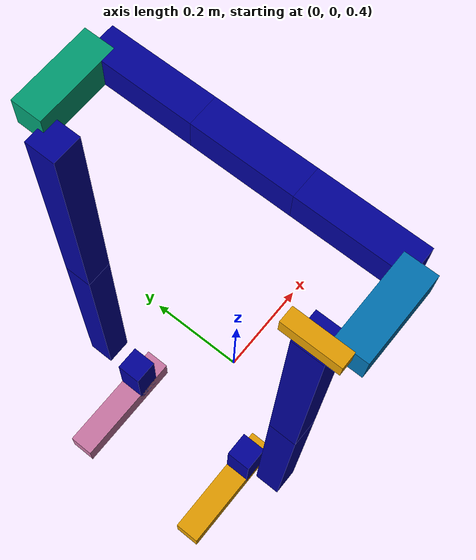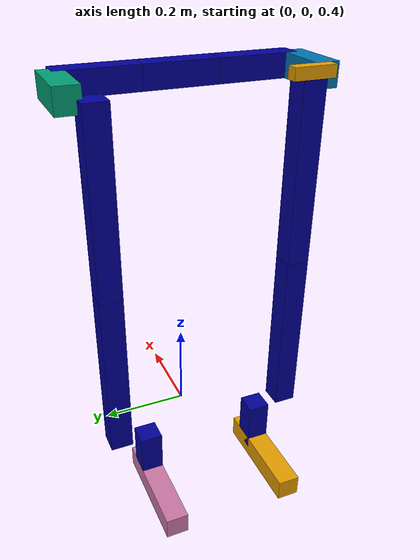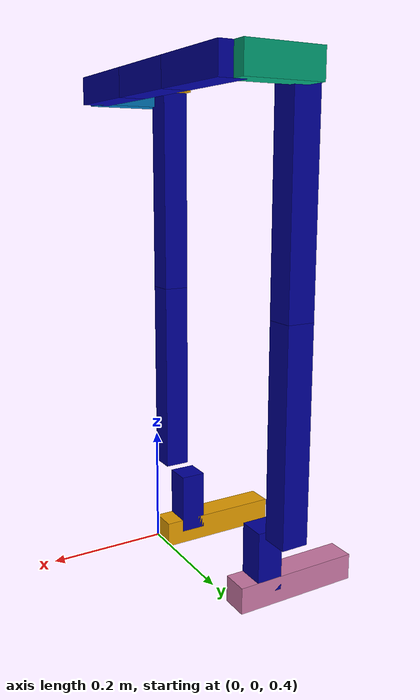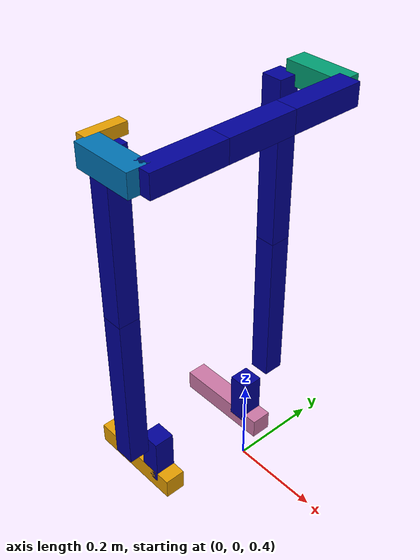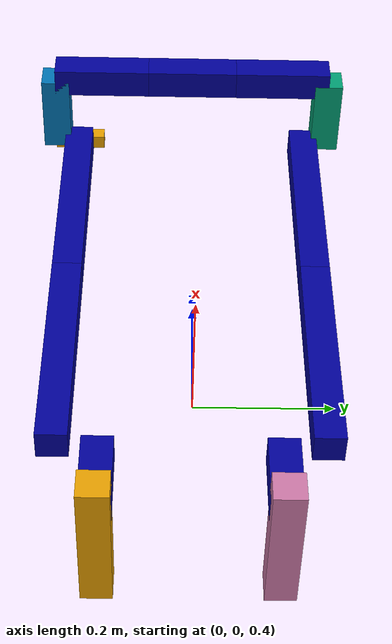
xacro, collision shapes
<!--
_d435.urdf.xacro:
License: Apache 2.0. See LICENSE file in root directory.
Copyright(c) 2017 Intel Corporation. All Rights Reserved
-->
<?xml version="1.0"?>
<!-- Revolute-Revolute Manipulator -->
<robot name="march" xmlns:xacro="http://www.ros.org/wiki/xacro">
    <!-- Switch between airgaiting or standing on the ground-->
    <!-- Value set to: 'world' fixes the robot to the world-->
    <!-- Value set to: 'base_link' makes the robot stand on the ground also set launch parameter fixed to false and set
    the hover_height to 0.0. Set ground_gait to true to ground gait in simulation.-->
    <xacro:arg name="ground_gait" default="false"/>

    <xacro:unless value="$(arg ground_gait)">
        <xacro:property name="parent_name" value="world"/>
        <xacro:property name="hover_height" value="0.3"/>
    </xacro:unless>
    <xacro:if value="$(arg ground_gait)">
        <xacro:property name="parent_name" value="base_link"/>
        <xacro:property name="hover_height" value="0.0"/>
        <gazebo>
            <plugin name="com_controller_plugin" filename="libmarch_gazebo_plugins.so"/>
        </gazebo>
    </xacro:if>

    <!-- The max effort of the rotary joints is lower then the value corresponding to 25A, because short-circuit errors
    have occured while applying the theoretical max effort for a long time. -->
    <xacro:arg name="max_effort_rotary" default="18000.0" />
    <xacro:arg name="max_effort_linear" default="22932.0" />
    <xacro:property name="max_effort_rotary" value="$(arg max_effort_rotary)" />
    <xacro:property name="max_effort_linear" value="$(arg max_effort_linear)" />

    <!-- Values for the safety limits, see https://wiki.ros.org/pr2_controller_manager/safety_limits -->
    <xacro:arg name="k_velocity_value_hfe" default="20000.0" />
    <xacro:arg name="k_velocity_value_kfe" default="20000.0" />
    <xacro:arg name="k_velocity_value_haa" default="20000.0" />
    <xacro:arg name="k_velocity_value_adpf" default="20000.0" />
    <xacro:property name="k_velocity_value_hfe" value="$(arg k_velocity_value_hfe)" />
    <xacro:property name="k_velocity_value_kfe" value="$(arg k_velocity_value_kfe)" />
    <xacro:property name="k_velocity_value_haa" value="$(arg k_velocity_value_haa)" />
    <xacro:property name="k_velocity_value_adpf" value="$(arg k_velocity_value_adpf)" />

    <xacro:arg name="k_position_value_hfe" default="14.88" />
    <xacro:arg name="k_position_value_kfe" default="14.88" />
    <xacro:arg name="k_position_value_haa" default="4.0" />
    <xacro:arg name="k_position_value_adpf" default="5.0" />
    <xacro:property name="k_position_value_hfe" value="$(arg k_position_value_hfe)" />
    <xacro:property name="k_position_value_kfe" value="$(arg k_position_value_kfe)" />
    <xacro:property name="k_position_value_haa" value="$(arg k_position_value_haa)" />
    <xacro:property name="k_position_value_adpf" value="$(arg k_position_value_adpf)" />

    <!-- Constants for robot dimensions -->
    <!-- Masses determined in Catia, see https://confluence.projectmarch.nl:8443/display/51/URDF+description -->
    <xacro:property name="width" value="0.05"/> <!-- Square dimensions (widthxwidth) of beams -->

    <xacro:property name="hip_base_height" value="0.160"/>
    <xacro:property name="hip_base_mass" value="8.686"/>
    <!-- mass = Hip base + HAA actuators -->

    <xacro:property name="hip_aa_frame_height" value="0.170"/>
    <xacro:property name="hip_aa_frame_width" value="0.1395"/>
    <xacro:property name="hip_aa_mass" value="2.982"/>
    <!-- mass = Moving hip -->

    <xacro:property name="upper_leg_height" value="0.385"/>
    <xacro:property name="upper_leg_offset" value="0.04"/>
    <xacro:property name="upper_leg_mass" value="4.995"/>
    <!-- mass = KFE joint + HFE joint + Upper leg -->

    <xacro:property name="lower_leg_height" value="0.385"/>
    <xacro:property name="lower_leg_mass" value="4.458"/>
    <!-- mass = Ankle actuator + Lower leg -->

    <xacro:property name="ankle_plate_height" value="0.12"/>
    <xacro:property name="ankle_plate_offset" value="0.07"/>

    <xacro:property name="foot_height_forward" value="${0.184}"/>
    <xacro:property name="foot_height_backward" value="${0.059}"/>
    <xacro:property name="foot_mass" value="1.821"/>
    <xacro:property name="foot_mu1" value="1"/>
    <xacro:property name="foot_mu2" value="1"/>
    <!-- Minimum allowable depth before contact correction impulse is applied. -->
    <xacro:property name="foot_min_depth" value="0.0005"/>
    <!-- mass = Passive ankle + foot -->

    <!-- Center of Mass (CoM) of the parts -->
    <!-- CoM has been determined in Catia, see https://confluence.projectmarch.nl:8443/display/51/URDF+description -->
    <xacro:property name="hip_base_com_x" value="${-hip_aa_frame_width + 0.147989}"/>
    <xacro:property name="hip_base_com_y" value="0.016341"/>
    <xacro:property name="hip_base_com_z" value="0.147761"/>

    <xacro:property name="hip_aa_com_x" value="${-hip_aa_frame_width + 0.108094}"/>
    <xacro:property name="hip_aa_com_y" value="${-hip_base_height/2 - hip_aa_frame_height + 0.197758}"/>
    <xacro:property name="hip_aa_com_z" value="0.029507"/>

    <xacro:property name="upper_leg_com_x" value="0.000709"/>
    <xacro:property name="upper_leg_com_y" value="${-hip_base_height/2 - hip_aa_frame_height +
                                                    upper_leg_offset + 0.215254}"/>
    <xacro:property name="upper_leg_com_z" value="-0.19205"/>

    <xacro:property name="lower_leg_com_x" value="-0.00321"/>
    <xacro:property name="lower_leg_com_y" value="${-hip_base_height/2 - hip_aa_frame_height +
                                                    upper_leg_offset + 0.184081}"/>
    <xacro:property name="lower_leg_com_z" value="${upper_leg_height - 0.527082}"/>

    <xacro:property name="foot_com_x" value="-0.028926"/>
    <xacro:property name="foot_com_y" value="${-hip_base_height/2 - hip_aa_frame_height +
                                               upper_leg_offset + ankle_plate_offset + 0.155916}"/>
    <xacro:property name="foot_com_z" value="${upper_leg_height + lower_leg_height + ankle_plate_height - 0.789788}"/>
    <xacro:property name="foot_scale" value="1.35"/>

    <!-- Inertia of the parts -->
    <!-- Inertia's have been determined in Catia, see
         https://confluence.projectmarch.nl:8443/display/51/URDF+description -->
    <xacro:property name="hip_base_Ixx" value="0.141"/>
    <xacro:property name="hip_base_Ixy" value="0.0000336"/>
    <xacro:property name="hip_base_Ixz" value="-0.007"/>
    <xacro:property name="hip_base_Iyy" value="0.087"/>
    <xacro:property name="hip_base_Iyz" value="0.0005089"/>
    <xacro:property name="hip_base_Izz" value="0.091"/>

    <xacro:property name="hip_aa_Ixx" value="0.013"/>
    <xacro:property name="hip_aa_Ixy" value="0.008"/>
    <xacro:property name="hip_aa_Ixz" value="0.005"/>
    <xacro:property name="hip_aa_Iyy" value="0.023"/>
    <xacro:property name="hip_aa_Iyz" value="-0.001"/>
    <xacro:property name="hip_aa_Izz" value="0.028"/>

    <xacro:property name="upper_leg_Ixx" value="0.127"/>
    <xacro:property name="upper_leg_Ixy" value="0.0001291"/>
    <xacro:property name="upper_leg_Ixz" value="-0.0002056"/>
    <xacro:property name="upper_leg_Iyy" value="0.122"/>
    <xacro:property name="upper_leg_Iyz" value="0.016"/>
    <xacro:property name="upper_leg_Izz" value="0.015"/>

    <xacro:property name="lower_leg_Ixx" value="0.075"/>
    <xacro:property name="lower_leg_Ixy" value="-0.027"/>
    <xacro:property name="lower_leg_Ixz" value="-0.008"/>
    <xacro:property name="lower_leg_Iyy" value="0.11"/>
    <xacro:property name="lower_leg_Iyz" value="-0.002"/>
    <xacro:property name="lower_leg_Izz" value="0.071" />

    <xacro:property name="foot_Ixx" value="0.021"/>
    <xacro:property name="foot_Ixy" value="-0.002"/>
    <xacro:property name="foot_Ixz" value="0.02"/>
    <xacro:property name="foot_Iyy" value="0.027"/>
    <xacro:property name="foot_Iyz" value="0.004"/>
    <xacro:property name="foot_Izz" value="0.01" />

    <!-- Joint properties -->
    <!-- For limit calculations, see https://confluence.projectmarch.nl:8443/pages/viewpage.action?pageId=268697604 -->
    <xacro:property name="left_hip_fe_rotation_lower_limit" value="${-21.04431152*pi/180}"/> <!-- rad -->
    <xacro:property name="left_hip_fe_rotation_upper_limit" value="${98.97033691*pi/180}"/> <!-- rad -->

    <xacro:property name="right_hip_fe_rotation_lower_limit" value="${-20.23406982*pi/180}"/> <!-- rad -->
    <xacro:property name="right_hip_fe_rotation_upper_limit" value="${99.48120117*pi/180}"/> <!-- rad -->

    <xacro:property name="hip_fe_soft_buffer" value="${3*pi/180}"/> <!-- rad -->
    <xacro:property name="hip_fe_effort_limit" value="${max_effort_rotary}"/> <!-- IU -->
    <xacro:property name="hip_fe_velocity_limit" value="2.0"/> <!-- rad/s -->

    <xacro:property name="left_hip_aa_rotation_lower_limit" value="${-18.54492188*pi/180}"/> <!-- rad -->
    <xacro:property name="left_hip_aa_rotation_upper_limit" value="${16.34765625*pi/180}"/> <!-- rad -->

    <xacro:property name="right_hip_aa_rotation_lower_limit" value="${-18.10546875*pi/180}"/> <!-- rad -->
    <xacro:property name="right_hip_aa_rotation_upper_limit" value="${15.99609375*pi/180}"/> <!-- rad -->

    <xacro:property name="hip_aa_soft_buffer" value="${3.5*pi/180}"/> <!-- rad -->
    <xacro:property name="hip_aa_effort_limit" value="${max_effort_linear}"/> <!-- IU -->
    <xacro:property name="hip_aa_velocity_limit" value="1.0"/> <!-- rad/s -->

    <xacro:property name="left_knee_rotation_lower_limit" value="${-5.012512207*pi/180}"/>
    <xacro:property name="left_knee_rotation_upper_limit" value="${112.4230957*pi/180}"/>

    <xacro:property name="right_knee_rotation_lower_limit" value="${-4.89440918*pi/180}"/>
    <xacro:property name="right_knee_rotation_upper_limit" value="${115.3097534*pi/180}"/>

    <xacro:property name="knee_extension_soft_buffer" value="${3.5*pi/180}"/> <!-- rad -->
    <xacro:property name="knee_flexion_soft_buffer" value="${3*pi/180}"/> <!-- rad -->
    <xacro:property name="knee_effort_limit" value="${max_effort_rotary}"/> <!-- IU -->
    <xacro:property name="knee_velocity_limit" value="2.5"/>

    <xacro:property name="left_ankle_rotation_lower_limit" value="${-26.30401611*pi/180}"/>
    <xacro:property name="left_ankle_rotation_upper_limit" value="${15.88348389*pi/180}"/>

    <xacro:property name="right_ankle_rotation_lower_limit" value="${-23.203125*pi/180}"/>
    <xacro:property name="right_ankle_rotation_upper_limit" value="${14.23828125*pi/180}"/>

    <xacro:property name="ankle_dorsalflexion_soft_buffer" value="${5*pi/180}"/> <!-- rad -->
    <xacro:property name="ankle_plantarflexion_soft_buffer" value="${3*pi/180}"/> <!-- rad -->
    <xacro:property name="ankle_effort_limit" value="${max_effort_linear}"/> <!-- IU -->
    <xacro:property name="ankle_velocity_limit" value="1.0"/>

    <xacro:property name="camera_link" value="0.05"/> <!-- Size of square 'camera' box -->
    <xacro:property name="axel_offset" value="0.05"/> <!-- Space btw top of beam and the each joint -->

    <!-- Import all Gazebo-customization elements, including Gazebo colors -->
    <xacro:include filename="$(find march_description)/urdf/march.gazebo"/>

    <material name="blue">
        <color rgba="0 0 0.6 1"/>
    </material>

    <!-- Used for fixing robot to Gazebo 'base_link' -->
    <link name="${parent_name}"/>

    <!-- Parts -->
    <!-- Hip-->
    <link name="hip_base">
        <visual>
            <origin xyz="${-hip_aa_frame_width} 0 0" rpy="0 0 ${pi}"/>
            <geometry>
                <mesh filename="package://march_description/urdf/stl-files/HipBase.stl" scale="1 1 1"/>
            </geometry>
            <material name="blue"/>
        </visual>

        <inertial>
            <origin xyz="${hip_base_com_x} ${hip_base_com_y} ${hip_base_com_z}" rpy="0 0 0"/>
            <mass value="${hip_base_mass}"/>
            <inertia
                    ixx="${hip_base_Ixx}"
                    ixy="${hip_base_Ixy}"
                    ixz="${hip_base_Ixz}"
                    iyy="${hip_base_Iyy}"
                    iyz="${hip_base_Iyz}"
                    izz="${hip_base_Izz}" />
        </inertial>

        <collision>
            <origin xyz="0 0 0" rpy="0 0 0"/>
            <geometry>
                <box size="${width} ${hip_base_height} ${width}"/>
            </geometry>
        </collision>
    </link>

    <!-- IMU-->
    <link name="imu_link">
    </link>

    <!-- Left Moving Hip-->
    <link name="hip_aa_frame_left_side">
        <visual>
            <origin xyz="${-hip_aa_frame_width} ${hip_base_height/2} 0" rpy="0 0 ${pi}"/>
            <geometry>
                <mesh filename="package://march_description/urdf/stl-files/LeftHAA.stl" scale="1 1 1"/>
            </geometry>
            <material name="blue"/>
        </visual>

        <collision>
            <origin xyz="0 ${-hip_aa_frame_height/2} 0" rpy="0 0 0"/>
            <geometry>
                <box size="${width} ${hip_aa_frame_height} ${width}"/>
            </geometry>
        </collision>
    </link>

    <link name="hip_aa_frame_left_front">
        <inertial>
            <origin xyz="${hip_aa_com_x} ${-hip_aa_com_y} ${hip_aa_com_z}" rpy="0 0 0"/>
            <mass value="${hip_aa_mass}"/>
            <inertia
                    ixx="${hip_aa_Ixx}"
                    ixy="${-hip_aa_Ixy}"
                    ixz="${hip_aa_Ixz}"
                    iyy="${hip_aa_Iyy}"
                    iyz="${-hip_aa_Iyz}"
                    izz="${hip_aa_Izz}" />
        </inertial>

        <collision>
            <origin xyz="${-hip_aa_frame_width/2} 0 0" rpy="0 0 0"/>
            <geometry>
                <box size="${hip_aa_frame_width} ${width} ${width}"/>
            </geometry>
        </collision>
    </link>

    <!-- Upper Leg Left-->
    <link name="upper_leg_left">
        <visual>
            <origin xyz="0 ${hip_base_height/2 + hip_aa_frame_height - upper_leg_offset} 0" rpy="0 0 ${pi}"/>
            <geometry>
                <mesh filename="package://march_description/urdf/stl-files/UpperLeftLeg.stl" scale="1 1 1"/>
            </geometry>
            <material name="blue"/>
        </visual>

        <inertial>
            <origin xyz="${upper_leg_com_x} ${-upper_leg_com_y} ${upper_leg_com_z}" rpy="0 0 0"/>
            <mass value="${upper_leg_mass}"/>
            <inertia
                    ixx="${upper_leg_Ixx}"
                    ixy="${-upper_leg_Ixy}"
                    ixz="${upper_leg_Ixz}"
                    iyy="${upper_leg_Iyy}"
                    iyz="${-upper_leg_Iyz}"
                    izz="${upper_leg_Izz}" />
        </inertial>

        <collision>
            <origin xyz="0 0 ${-upper_leg_height/2}" rpy="0 0 0"/>
            <geometry>
                <box size="${width} ${width} ${upper_leg_height}"/>
            </geometry>
        </collision>
    </link>

    <!-- Lower Leg Left -->
    <link name="lower_leg_left">
        <visual>
            <origin
                xyz="0 ${hip_base_height/2 + hip_aa_frame_height - upper_leg_offset} ${upper_leg_height}"
                rpy="0 0 ${pi}"
            />
            <geometry>
                <mesh filename="package://march_description/urdf/stl-files/LowerLeftLeg.stl" scale="1 1 1"/>
            </geometry>
            <material name="blue"/>
        </visual>

        <inertial>
            <origin xyz="${lower_leg_com_x} ${-lower_leg_com_y} ${lower_leg_com_z}" rpy="0 0 0"/>
            <mass value="${lower_leg_mass}"/>
            <inertia
                    ixx="${lower_leg_Ixx}"
                    ixy="${-lower_leg_Ixy}"
                    ixz="${lower_leg_Ixz}"
                    iyy="${lower_leg_Iyy}"
                    iyz="${-lower_leg_Iyz}"
                    izz="${lower_leg_Izz}" />
        </inertial>

        <collision>
            <origin xyz="0 0 ${-lower_leg_height/2}" rpy="0 0 0"/>
            <geometry>
                <box size="${width} ${width} ${lower_leg_height}"/>
            </geometry>
        </collision>
    </link>

    <!-- Ankle plate Left -->
    <link name="ankle_plate_left">
        <visual>
            <origin
                xyz="0
                     ${hip_base_height/2 + hip_aa_frame_height - upper_leg_offset - ankle_plate_offset}
                     ${foot_scale * (upper_leg_height + lower_leg_height)}"
                rpy="0 0 ${pi}"
            />
            <geometry>
                <mesh filename="package://march_description/urdf/stl-files/LeftFoot.stl" scale="1 1 ${foot_scale}"/>
            </geometry>
            <material name="blue"/>
        </visual>
        <collision>
            <origin xyz="0 0 ${-ankle_plate_height/2}" rpy="0 0 0"/>
            <geometry>
                <box size="${width} ${width} ${ankle_plate_height}"/>
            </geometry>
        </collision>
    </link>

    <gazebo reference="ankle_plate_left">
        <sensor name="ankle_plate_left_contact" type="contact">
            <plugin name="contact_plugin" filename="libcontact.so"/>
            <contact>
                <collision>ankle_plate_left_fixed_joint_lump__foot_left_collision_1</collision>
            </contact>
            <update_rate>30</update_rate>
            <always_on>true</always_on>
        </sensor>
    </gazebo>

    <!-- Foot Left -->
    <link name="foot_left">
        <inertial>
            <origin xyz="${foot_com_x} ${-foot_com_y} ${foot_com_z}" rpy="0 0 0"/>
            <mass value="${foot_mass}"/>
            <inertia
                    ixx="${foot_Ixx}"
                    ixy="${-foot_Ixy}"
                    ixz="${foot_Ixz}"
                    iyy="${foot_Iyy}"
                    iyz="${-foot_Iyz}"
                    izz="${foot_Izz}" />
        </inertial>
        <collision>
            <origin xyz="${(-foot_height_forward+foot_height_backward)/2} 0 0" rpy="0 0 0"/>
            <geometry>
                <box size="${foot_height_forward+foot_height_backward} ${width} ${width}"/>
            </geometry>
        </collision>
    </link>

    <gazebo reference="foot_left">
        <mu1>${foot_mu1}</mu1>
        <mu2>${foot_mu2}</mu2>
        <minDepth>${foot_min_depth}</minDepth>
        <fdir1>1 0 0</fdir1>
    </gazebo>

    <!-- Right Moving Hip-->
    <link name="hip_aa_frame_right_side">
        <visual>
            <origin xyz="${-hip_aa_frame_width} ${-hip_base_height/2} 0" rpy="0 0 ${pi}"/>
            <geometry>
                <mesh filename="package://march_description/urdf/stl-files/RightHAA.stl" scale="1 1 1"/>
            </geometry>
            <material name="blue"/>
        </visual>

        <collision>
            <origin xyz="0 ${hip_aa_frame_height/2} 0" rpy="0 0 0"/>
            <geometry>
                <box size="${width} ${hip_aa_frame_height} ${width}"/>
            </geometry>
        </collision>
    </link>

    <link name="hip_aa_frame_right_front">
        <inertial>
            <origin xyz="${hip_aa_com_x} ${hip_aa_com_y} ${hip_aa_com_z}" rpy="0 0 0"/>
            <mass value="${hip_aa_mass}"/>
            <inertia
                    ixx="${hip_aa_Ixx}"
                    ixy="${hip_aa_Ixy}"
                    ixz="${hip_aa_Ixz}"
                    iyy="${hip_aa_Iyy}"
                    iyz="${hip_aa_Iyz}"
                    izz="${hip_aa_Izz}" />
        </inertial>

        <collision>
            <origin xyz="${-hip_aa_frame_width/2} 0 0" rpy="0 0 0"/>
            <geometry>
                <box size="${hip_aa_frame_width} ${width} ${width}"/>
            </geometry>
        </collision>
    </link>

    <!-- Upper Leg Right-->
    <link name="upper_leg_right">
        <visual>
            <origin xyz="0 ${-hip_base_height/2 - hip_aa_frame_height + upper_leg_offset} 0" rpy="0 0 ${pi}"/>
            <geometry>
                <mesh filename="package://march_description/urdf/stl-files/UpperRightLeg.stl" scale="1 1 1"/>
            </geometry>
            <material name="blue"/>
        </visual>

        <inertial>
            <origin xyz="${upper_leg_com_x} ${upper_leg_com_y} ${upper_leg_com_z}" rpy="0 0 0"/>
            <mass value="${upper_leg_mass}"/>
            <inertia
                    ixx="${upper_leg_Ixx}"
                    ixy="${upper_leg_Ixy}"
                    ixz="${upper_leg_Ixz}"
                    iyy="${upper_leg_Iyy}"
                    iyz="${upper_leg_Iyz}"
                    izz="${upper_leg_Izz}" />
        </inertial>

        <collision>
            <origin xyz="0 0 ${-upper_leg_height/2}" rpy="0 0 0"/>
            <geometry>
                <box size="${width} ${width} ${upper_leg_height}"/>
            </geometry>
        </collision>

    </link>

    <!-- Lower Leg Right -->
    <link name="lower_leg_right">
        <visual>
            <origin
                xyz="0 ${-hip_base_height/2 - hip_aa_frame_height + upper_leg_offset} ${upper_leg_height}"
                rpy="0 0 ${pi}"
            />
            <geometry>
                <mesh filename="package://march_description/urdf/stl-files/LowerRightLeg.stl" scale="1 1 1"/>
            </geometry>
            <material name="blue"/>
        </visual>

        <inertial>
            <origin xyz="${lower_leg_com_x} ${lower_leg_com_y} ${lower_leg_com_z}" rpy="0 0 0"/>
            <mass value="${lower_leg_mass}"/>
            <inertia
                    ixx="${lower_leg_Ixx}"
                    ixy="${lower_leg_Ixy}"
                    ixz="${lower_leg_Ixz}"
                    iyy="${lower_leg_Iyy}"
                    iyz="${lower_leg_Iyz}"
                    izz="${lower_leg_Izz}" />
        </inertial>

        <collision>
            <origin xyz="0 0 ${-lower_leg_height/2}" rpy="0 0 0"/>
            <geometry>
                <box size="${width} ${width} ${lower_leg_height}"/>
            </geometry>
        </collision>
    </link>

    <!-- Ankle Plate Right -->
    <link name="ankle_plate_right">
        <visual>
            <origin
                xyz="0
                    ${-hip_base_height/2 - hip_aa_frame_height+ upper_leg_offset + ankle_plate_offset}
                    ${foot_scale * (upper_leg_height + lower_leg_height)}"
                rpy="0 0 ${pi}"/>
            />
            <geometry>
                <mesh filename="package://march_description/urdf/stl-files/RightFoot.stl" scale="1 1 ${foot_scale}"/>
            </geometry>
            <material name="blue"/>
        </visual>
        <collision>
            <origin xyz="0 0 ${-ankle_plate_height/2}" rpy="0 0 0"/>
            <geometry>
                <box size="${width} ${width} ${ankle_plate_height}"/>
            </geometry>
        </collision>
    </link>

    <gazebo reference="ankle_plate_right">
        <sensor name="ankle_plate_right_contact" type="contact">
            <plugin name="contact_plugin" filename="libcontact.so"/>
            <contact>
                <collision>ankle_plate_right_fixed_joint_lump__foot_right_collision_1</collision>
            </contact>
            <update_rate>30</update_rate>
            <always_on>true</always_on>
        </sensor>
    </gazebo>

    <!-- Foot Right -->
    <link name="foot_right">
        <inertial>
            <origin xyz="${foot_com_x} ${foot_com_y} ${foot_com_z}" rpy="0 0 0"/>
            <mass value="${foot_mass}"/>
            <inertia
                    ixx="${foot_Ixx}"
                    ixy="${foot_Ixy}"
                    ixz="${foot_Ixz}"
                    iyy="${foot_Iyy}"
                    iyz="${foot_Iyz}"
                    izz="${foot_Izz}" />
        </inertial>
        <collision>
            <origin xyz="${(-foot_height_forward+foot_height_backward)/2} 0 0" rpy="0 0 0"/>
            <geometry>
                <box size="${foot_height_forward+foot_height_backward} ${width} ${width}"/>
            </geometry>
        </collision>
    </link>

    <gazebo reference="foot_right">
        <mu1>${foot_mu1}</mu1>
        <mu2>${foot_mu2}</mu2>
        <minDepth>${foot_min_depth}</minDepth>
        <fdir1>1 0 0</fdir1>
    </gazebo>

    <!-- Joints -->
    <joint name="imu_joint" type="fixed">
        <parent link="${parent_name}"/>
        <child link="imu_link"/>
    </joint>

    <joint name="hip" type="fixed">
        <parent link="imu_link"/>
        <child link="hip_base"/>
        <origin xyz="0 0 ${lower_leg_height+upper_leg_height+ankle_plate_height+width/2.0+hover_height}" rpy="0 0 0"/>
    </joint>

    <joint name="left_hip_aa" type="revolute">
        <parent link="hip_base"/>
        <child link="hip_aa_frame_left_side"/>
        <origin xyz="0 ${-hip_base_height/2} 0" rpy="0 0 0"/>
        <axis xyz="-1 0 0"/>

        <limit velocity="${hip_aa_velocity_limit}"
               effort="${hip_aa_effort_limit}"
               lower="${left_hip_aa_rotation_lower_limit}"
               upper="${left_hip_aa_rotation_upper_limit}"/>
        <safety_controller soft_lower_limit="${left_hip_aa_rotation_lower_limit + hip_aa_soft_buffer}"
                           soft_upper_limit="${left_hip_aa_rotation_upper_limit - hip_aa_soft_buffer}"
                           k_position="${k_position_value_haa}"
                           k_velocity="${k_velocity_value_haa}" />
    </joint>

    <joint name="left_hip_angle" type="fixed">
        <parent link="hip_aa_frame_left_side"/>
        <child link="hip_aa_frame_left_front"/>
        <origin xyz="0 ${-hip_aa_frame_height} 0" rpy="0 0 0"/>
    </joint>

    <joint name="left_hip_fe" type="revolute">
        <parent link="hip_aa_frame_left_front"/>
        <child link="upper_leg_left"/>
        <origin xyz="${-hip_aa_frame_width} ${upper_leg_offset} 0" rpy="0 0 0"/>
        <axis xyz="0 1 0"/>

        <limit velocity="${hip_fe_velocity_limit}"
               effort="${hip_fe_effort_limit}"
               lower="${left_hip_fe_rotation_lower_limit}"
               upper="${left_hip_fe_rotation_upper_limit}"/>
        <safety_controller soft_lower_limit="${left_hip_fe_rotation_lower_limit + hip_fe_soft_buffer}"
                           soft_upper_limit="${left_hip_fe_rotation_upper_limit - hip_fe_soft_buffer}"
                           k_position="${k_position_value_hfe}"
                           k_velocity="${k_velocity_value_hfe}" />
    </joint>

    <joint name="left_knee" type="revolute">
        <parent link= "upper_leg_left"/>
        <child link="lower_leg_left"/>
        <origin xyz="0 0 ${-upper_leg_height}" rpy="0 0 0"/>
        <axis xyz="0 -1 0"/>

        <limit velocity="${knee_velocity_limit}"
               effort="${knee_effort_limit}"
               lower="${left_knee_rotation_lower_limit}"
               upper="${left_knee_rotation_upper_limit}"/>
        <safety_controller soft_lower_limit="${left_knee_rotation_lower_limit + knee_extension_soft_buffer}"
                           soft_upper_limit="${left_knee_rotation_upper_limit - knee_flexion_soft_buffer}"
                           k_position="${k_position_value_kfe}"
                           k_velocity="${k_velocity_value_kfe}" />
    </joint>

    <joint name="left_ankle" type="revolute">
        <parent link="lower_leg_left"/>
        <child link="ankle_plate_left"/>
        <origin xyz="0 ${ankle_plate_offset} ${-lower_leg_height}" rpy="0 0 0"/>
        <axis xyz="0 1 0"/>

        <limit velocity="${ankle_velocity_limit}"
               effort="${ankle_effort_limit}"
               lower="${left_ankle_rotation_lower_limit}"
               upper="${left_ankle_rotation_upper_limit}"/>
        <safety_controller soft_lower_limit="${left_ankle_rotation_lower_limit + ankle_plantarflexion_soft_buffer}"
                           soft_upper_limit="${left_ankle_rotation_upper_limit - ankle_dorsalflexion_soft_buffer}"
                           k_position="${k_position_value_adpf}"
                           k_velocity="${k_velocity_value_adpf}" />
    </joint>

    <joint name="left_foot_angle" type="fixed">
        <parent link="ankle_plate_left"/>
        <child link="foot_left"/>
        <origin xyz="0 0 ${-ankle_plate_height}" rpy="0 0 0"/>
    </joint>

    <joint name="right_hip_aa" type="revolute">
        <parent link="hip_base"/>
        <child link="hip_aa_frame_right_side"/>
        <origin xyz="0 ${hip_base_height/2} 0" rpy="0 0 0"/>
        <axis xyz="1 0 0"/>

        <limit velocity="${hip_aa_velocity_limit}"
               effort="${hip_aa_effort_limit}"
               lower="${right_hip_aa_rotation_lower_limit}"
               upper="${right_hip_aa_rotation_upper_limit}"/>
        <safety_controller soft_lower_limit="${right_hip_aa_rotation_lower_limit + hip_aa_soft_buffer}"
                           soft_upper_limit="${right_hip_aa_rotation_upper_limit - hip_aa_soft_buffer}"
                           k_position="${k_position_value_haa}"
                           k_velocity="${k_velocity_value_haa}" />

    </joint>

    <joint name="right_hip_angle" type="fixed">
        <parent link="hip_aa_frame_right_side"/>
        <child link="hip_aa_frame_right_front"/>
        <origin xyz="0 ${hip_aa_frame_height} 0" rpy="0 0 0"/>
    </joint>

    <joint name="right_hip_fe" type="revolute">
        <parent link="hip_aa_frame_right_front"/>
        <child link="upper_leg_right"/>
        <origin xyz="${-hip_aa_frame_width} ${-upper_leg_offset} 0" rpy="0 0 0"/>
        <axis xyz="0 1 0"/>

        <limit velocity="${hip_fe_velocity_limit}"
               effort="${hip_fe_effort_limit}"
               lower="${right_hip_fe_rotation_lower_limit}"
               upper="${right_hip_fe_rotation_upper_limit}"/>
        <safety_controller soft_lower_limit="${right_hip_fe_rotation_lower_limit + hip_fe_soft_buffer}"
                           soft_upper_limit="${right_hip_fe_rotation_upper_limit - hip_fe_soft_buffer}"
                           k_position="${k_position_value_hfe}"
                           k_velocity="${k_velocity_value_hfe}" />

    </joint>

    <joint name="right_knee" type="revolute">
        <parent link="upper_leg_right"/>
        <child link="lower_leg_right"/>
        <origin xyz="0 0 ${-upper_leg_height}" rpy="0 0 0"/>
        <axis xyz="0 -1 0"/>

        <limit velocity="${knee_velocity_limit}"
               effort="${knee_effort_limit}"
               lower="${right_knee_rotation_lower_limit}"
               upper="${right_knee_rotation_upper_limit}"/>
        <safety_controller soft_lower_limit="${right_knee_rotation_lower_limit + knee_extension_soft_buffer}"
                           soft_upper_limit="${right_knee_rotation_upper_limit - knee_flexion_soft_buffer}"
                           k_position="${k_position_value_kfe}"
                           k_velocity="${k_velocity_value_kfe}" />
    </joint>

    <joint name="right_ankle" type="revolute">
        <parent link="lower_leg_right"/>
        <child link="ankle_plate_right"/>
        <origin xyz="0 ${-ankle_plate_offset} ${-lower_leg_height}" rpy="0 0 0"/>
        <axis xyz="0 1 0"/>

        <limit velocity="${ankle_velocity_limit}"
               effort="${ankle_effort_limit}"
               lower="${right_ankle_rotation_lower_limit}"
               upper="${right_ankle_rotation_upper_limit}"/>
        <safety_controller soft_lower_limit="${right_ankle_rotation_lower_limit + ankle_plantarflexion_soft_buffer}"
                           soft_upper_limit="${right_ankle_rotation_upper_limit - ankle_dorsalflexion_soft_buffer}"
                           k_position="${k_position_value_adpf}"
                           k_velocity="${k_velocity_value_adpf}" />
    </joint>

    <joint name="right_foot_angle" type="fixed">
        <parent link="ankle_plate_right"/>
        <child link="foot_right"/>
        <origin xyz="0 0 ${-ankle_plate_height}" rpy="0 0 0"/>
    </joint>

    <xacro:include filename="$(find realsense2_description)/urdf/_d435.urdf.xacro" />
    <xacro:sensor_d435 parent="upper_leg_left">
        <origin xyz="0 0 0" rpy="0 0 3.1416"/>
    </xacro:sensor_d435>

    <!-- ROS Control plugin for Gazebo -->
    <transmission name="left_hip_aa">
        <type>transmission_interface/SimpleTransmission</type>
        <joint name="left_hip_aa">
            <hardwareInterface>hardware_interface/EffortJointInterface</hardwareInterface>
        </joint>
        <actuator name="left_hip_aa_motor">
            <mechanicalReduction>200</mechanicalReduction>
        </actuator>
    </transmission>

    <transmission name="left_hip_fe">
        <type>transmission_interface/SimpleTransmission</type>
        <joint name="left_hip_fe">
            <hardwareInterface>hardware_interface/EffortJointInterface</hardwareInterface>
        </joint>
        <actuator name="left_hip_fe_motor">
            <mechanicalReduction>101</mechanicalReduction>
        </actuator>
    </transmission>

    <transmission name="left_knee">
        <type>transmission_interface/SimpleTransmission</type>
        <joint name="left_knee">
            <hardwareInterface>hardware_interface/EffortJointInterface</hardwareInterface>
        </joint>
        <actuator name="left_knee_motor">
            <mechanicalReduction>101</mechanicalReduction>
        </actuator>
    </transmission>

    <transmission name="left_ankle">
        <type>transmission_interface/SimpleTransmission</type>
        <joint name="left_ankle">
            <hardwareInterface>hardware_interface/EffortJointInterface</hardwareInterface>
        </joint>
        <actuator name="left_ankle_motor">
            <mechanicalReduction>200</mechanicalReduction>
        </actuator>
    </transmission>

    <transmission name="right_hip_aa">
        <type>transmission_interface/SimpleTransmission</type>
        <joint name="right_hip_aa">
            <hardwareInterface>hardware_interface/EffortJointInterface</hardwareInterface>
        </joint>
        <actuator name="right_hip_aa_motor">
            <mechanicalReduction>200</mechanicalReduction>
        </actuator>
    </transmission>

    <transmission name="right_hip_fe">
        <type>transmission_interface/SimpleTransmission</type>
        <joint name="right_hip_fe">
            <hardwareInterface>hardware_interface/EffortJointInterface</hardwareInterface>
        </joint>
        <actuator name="right_hip_fe_motor">
            <mechanicalReduction>101</mechanicalReduction>
        </actuator>
    </transmission>

    <transmission name="right_knee">
        <type>transmission_interface/SimpleTransmission</type>
        <joint name="right_knee">
            <hardwareInterface>hardware_interface/EffortJointInterface</hardwareInterface>
        </joint>
        <actuator name="right_knee_motor">
            <mechanicalReduction>101</mechanicalReduction>
        </actuator>
    </transmission>

    <transmission name="right_ankle">
        <type>transmission_interface/SimpleTransmission</type>
        <joint name="right_ankle">
            <hardwareInterface>hardware_interface/EffortJointInterface</hardwareInterface>
        </joint>
        <actuator name="right_ankle_motor">
            <mechanicalReduction>200</mechanicalReduction>
        </actuator>
    </transmission>
</robot>

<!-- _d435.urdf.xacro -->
<robot name="sensor_d435" xmlns:xacro="http://www.ros.org/wiki/xacro">
  <!-- Includes -->
  <xacro:include filename="$(find descriptions)/realsense2_description/urdf/_materials.urdf.xacro" />
  <xacro:include filename="$(find descriptions)/realsense2_description/urdf/_usb_plug.urdf.xacro" />

  <xacro:macro name="sensor_d435" params="parent *origin name:=camera use_nominal_extrinsics:=false add_plug:=false use_mesh:=true">
    <xacro:property name="M_PI" value="3.1415926535897931" />

    <!-- The following values are approximate, and the camera node
     publishing TF values with actual calibrated camera extrinsic values -->
    <xacro:property name="d435_cam_depth_to_infra1_offset" value="0.0"/>
    <xacro:property name="d435_cam_depth_to_infra2_offset" value="-0.050"/>
    <xacro:property name="d435_cam_depth_to_color_offset" value="0.015"/>

    <!-- The following values model the aluminum peripherial case for the
  	D435 camera, with the camera joint represented by the actual
  	peripherial camera tripod mount -->
    <xacro:property name="d435_cam_width" value="0.090"/>
    <xacro:property name="d435_cam_height" value="0.025"/>
    <xacro:property name="d435_cam_depth" value="0.02505"/>
    <xacro:property name="d435_cam_mount_from_center_offset" value="0.0149"/>
    <!-- glass cover is 0.1 mm inwards from front aluminium plate -->
    <xacro:property name="d435_glass_to_front" value="0.1e-3"/>
    <!-- see datasheet Revision 007, Fig. 4-4 page 65 -->
    <xacro:property name="d435_zero_depth_to_glass" value="4.2e-3"/>
    <!-- convenience precomputation to avoid clutter-->
    <xacro:property name="d435_mesh_x_offset" value="${d435_cam_mount_from_center_offset-d435_glass_to_front-d435_zero_depth_to_glass}"/>

    <!-- The following offset is relative the the physical D435 camera peripherial
  	camera tripod mount -->
    <xacro:property name="d435_cam_depth_px" value="${d435_cam_mount_from_center_offset}"/>
    <xacro:property name="d435_cam_depth_py" value="0.0175"/>
    <xacro:property name="d435_cam_depth_pz" value="${d435_cam_height/2}"/>

    <!-- camera body, with origin at bottom screw mount -->
    <joint name="${name}_joint" type="fixed">
      <xacro:insert_block name="origin" />
      <parent link="${parent}"/>
      <child link="${name}_bottom_screw_frame" />
    </joint>
    <link name="${name}_bottom_screw_frame"/>

    <joint name="${name}_link_joint" type="fixed">
      <origin xyz="${d435_mesh_x_offset} ${d435_cam_depth_py} ${d435_cam_depth_pz}" rpy="0 0 0"/>
      <parent link="${name}_bottom_screw_frame"/>
      <child link="${name}_link" />
    </joint>

    <link name="${name}_link">
      <visual>
        <xacro:if value="${use_mesh}">
          <!-- the mesh origin is at front plate in between the two infrared camera axes -->
          <origin xyz="${d435_zero_depth_to_glass + d435_glass_to_front} ${-d435_cam_depth_py} 0" rpy="${M_PI/2} 0 ${M_PI/2}"/>
          <geometry>
            <mesh filename="package://descriptions/realsense2_description/meshes/d435.dae" />
          </geometry>
        </xacro:if>
        <xacro:unless value="${use_mesh}">
          <origin xyz="0 ${-d435_cam_depth_py} 0" rpy="0 0 0"/>
          <geometry>
            <box size="${d435_cam_depth} ${d435_cam_width} ${d435_cam_height}"/>
          </geometry>
          <material name="aluminum"/>
        </xacro:unless>
      </visual>
      <collision>
        <origin xyz="0 ${-d435_cam_depth_py} 0" rpy="0 0 0"/>
        <geometry>
          <box size="${d435_cam_depth} ${d435_cam_width} ${d435_cam_height}"/>
        </geometry>
      </collision>
      <inertial>
        <!-- The following are not reliable values, and should not be used for modeling -->
        <mass value="0.072" />
        <origin xyz="0 0 0" />
        <inertia ixx="0.003881243" ixy="0.0" ixz="0.0" iyy="0.000498940" iyz="0.0" izz="0.003879257" />
      </inertial>
    </link>

    <!-- Use the nominal extrinsics between camera frames if the calibrated extrinsics aren't being published. e.g. running the device in simulation  -->
    <xacro:if value="${use_nominal_extrinsics}">
      <!-- camera depth joints and links -->
      <joint name="${name}_depth_joint" type="fixed">
        <origin xyz="0 0 0" rpy="0 0 0"/>
        <parent link="${name}_link"/>
        <child link="${name}_depth_frame" />
      </joint>
      <link name="${name}_depth_frame"/>

      <joint name="${name}_depth_optical_joint" type="fixed">
        <origin xyz="0 0 0" rpy="${-M_PI/2} 0 ${-M_PI/2}" />
        <parent link="${name}_depth_frame" />
        <child link="${name}_depth_optical_frame" />
      </joint>
      <link name="${name}_depth_optical_frame"/>

      <!-- camera left IR joints and links -->
      <joint name="${name}_infra1_joint" type="fixed">
        <origin xyz="0 ${d435_cam_depth_to_infra1_offset} 0" rpy="0 0 0" />
        <parent link="${name}_link" />
        <child link="${name}_infra1_frame" />
      </joint>
      <link name="${name}_infra1_frame"/>

      <joint name="${name}_infra1_optical_joint" type="fixed">
        <origin xyz="0 0 0" rpy="${-M_PI/2} 0 ${-M_PI/2}" />
        <parent link="${name}_infra1_frame" />
        <child link="${name}_infra1_optical_frame" />
      </joint>
      <link name="${name}_infra1_optical_frame"/>

      <!-- camera right IR joints and links -->
      <joint name="${name}_infra2_joint" type="fixed">
        <origin xyz="0 ${d435_cam_depth_to_infra2_offset} 0" rpy="0 0 0" />
        <parent link="${name}_link" />
        <child link="${name}_infra2_frame" />
      </joint>
      <link name="${name}_infra2_frame"/>

      <joint name="${name}_infra2_optical_joint" type="fixed">
        <origin xyz="0 0 0" rpy="${-M_PI/2} 0 ${-M_PI/2}" />
        <parent link="${name}_infra2_frame" />
        <child link="${name}_infra2_optical_frame" />
      </joint>
      <link name="${name}_infra2_optical_frame"/>

      <!-- camera color joints and links -->
      <joint name="${name}_color_joint" type="fixed">
        <origin xyz="0 ${d435_cam_depth_to_color_offset} 0" rpy="0 0 0" />
        <parent link="${name}_link" />
        <child link="${name}_color_frame" />
      </joint>
      <link name="${name}_color_frame"/>

      <joint name="${name}_color_optical_joint" type="fixed">
        <origin xyz="0 0 0" rpy="${-M_PI/2} 0 ${-M_PI/2}" />
        <parent link="${name}_color_frame" />
        <child link="${name}_color_optical_frame" />
      </joint>
      <link name="${name}_color_optical_frame"/>
    </xacro:if>

    <xacro:if value="${add_plug}">
      <xacro:usb_plug parent="${name}_link" name="${name}_usb_plug">
        <origin xyz="${d435_cam_mount_from_center_offset - 0.02095} ${-d435_cam_depth_py - 0.0353} 0" rpy="0 0 0"/>
      </xacro:usb_plug>
    </xacro:if>
  </xacro:macro>
</robot>
